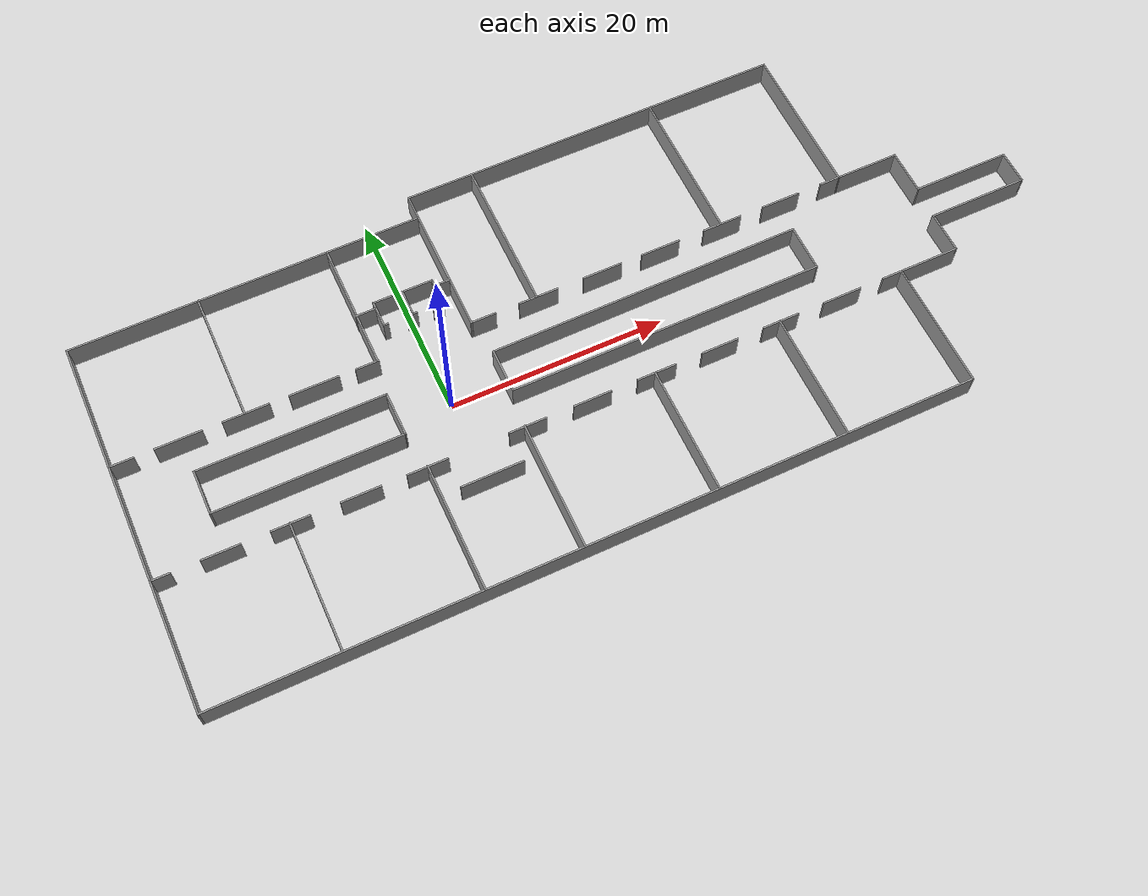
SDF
<?xml version='1.0'?>
<sdf version='1.7'>
  <model name='302_3f_room_and_hallway_c'>
    <pose>13.7802 1.31646 0 0 -0 0</pose>
    <link name='Wall_0'>
      <collision name='Wall_0_Collision'>
        <geometry>
          <box>
            <size>2.18139 0.15 2.5</size>
          </box>
        </geometry>
        <pose>0 0 1.25 0 -0 0</pose>
      </collision>
      <visual name='Wall_0_Visual'>
        <pose>0 0 1.25 0 -0 0</pose>
        <geometry>
          <box>
            <size>2.18139 0.15 2.5</size>
          </box>
        </geometry>
        <material>
          <script>
            <uri>file://media/materials/scripts/gazebo.material</uri>
            <name>Gazebo/Grey</name>
          </script>
          <ambient>1 1 1 1</ambient>
        </material>
        <meta>
          <layer>0</layer>
        </meta>
      </visual>
      <pose>-19.1407 4.17518 0 0 -0 3.14159</pose>
    </link>
    <link name='Wall_10'>
      <collision name='Wall_10_Collision'>
        <geometry>
          <box>
            <size>24 0.15 2.5</size>
          </box>
        </geometry>
        <pose>0 0 1.25 0 -0 0</pose>
      </collision>
      <visual name='Wall_10_Visual'>
        <pose>0 0 1.25 0 -0 0</pose>
        <geometry>
          <box>
            <size>24 0.15 2.5</size>
          </box>
        </geometry>
        <material>
          <script>
            <uri>file://media/materials/scripts/gazebo.material</uri>
            <name>Gazebo/Grey</name>
          </script>
          <ambient>1 1 1 1</ambient>
        </material>
        <meta>
          <layer>0</layer>
        </meta>
      </visual>
      <pose>-30.1 16.2752 0 0 -0 0</pose>
    </link>
    <link name='Wall_100'>
      <collision name='Wall_100_Collision'>
        <geometry>
          <box>
            <size>2 0.15 2.5</size>
          </box>
        </geometry>
        <pose>0 0 1.25 0 -0 0</pose>
      </collision>
      <visual name='Wall_100_Visual'>
        <pose>0 0 1.25 0 -0 0</pose>
        <geometry>
          <box>
            <size>2 0.15 2.5</size>
          </box>
        </geometry>
        <material>
          <script>
            <uri>file://media/materials/scripts/gazebo.material</uri>
            <name>Gazebo/Grey</name>
          </script>
          <ambient>1 1 1 1</ambient>
        </material>
        <meta>
          <layer>0</layer>
        </meta>
      </visual>
      <pose>-10.8738 8.1512 0 0 -0 1.5708</pose>
    </link>
    <link name='Wall_101'>
      <collision name='Wall_101_Collision'>
        <geometry>
          <box>
            <size>1.5 0.15 2.5</size>
          </box>
        </geometry>
        <pose>0 0 1.25 0 -0 0</pose>
      </collision>
      <visual name='Wall_101_Visual'>
        <pose>0 0 1.25 0 -0 0</pose>
        <geometry>
          <box>
            <size>1.5 0.15 2.5</size>
          </box>
        </geometry>
        <material>
          <script>
            <uri>file://media/materials/scripts/gazebo.material</uri>
            <name>Gazebo/Grey</name>
          </script>
          <ambient>1 1 1 1</ambient>
        </material>
        <meta>
          <layer>0</layer>
        </meta>
      </visual>
      <pose>-10.1988 9.0762 0 0 -0 0</pose>
    </link>
    <link name='Wall_105'>
      <collision name='Wall_105_Collision'>
        <geometry>
          <box>
            <size>4.26858 0.15 2.5</size>
          </box>
        </geometry>
        <pose>0 0 1.25 0 -0 0</pose>
      </collision>
      <visual name='Wall_105_Visual'>
        <pose>0 0 1.25 0 -0 0</pose>
        <geometry>
          <box>
            <size>4.26858 0.15 2.5</size>
          </box>
        </geometry>
        <material>
          <script>
            <uri>file://media/materials/scripts/gazebo.material</uri>
            <name>Gazebo/Grey</name>
          </script>
          <ambient>1 1 1 1</ambient>
        </material>
        <meta>
          <layer>0</layer>
        </meta>
      </visual>
      <pose>-35.784 -1.20336 0 0 -0 -1.5708</pose>
    </link>
    <link name='Wall_106'>
      <collision name='Wall_106_Collision'>
        <geometry>
          <box>
            <size>17.25 0.15 2.5</size>
          </box>
        </geometry>
        <pose>0 0 1.25 0 -0 0</pose>
      </collision>
      <visual name='Wall_106_Visual'>
        <pose>0 0 1.25 0 -0 0</pose>
        <geometry>
          <box>
            <size>17.25 0.15 2.5</size>
          </box>
        </geometry>
        <material>
          <script>
            <uri>file://media/materials/scripts/gazebo.material</uri>
            <name>Gazebo/Grey</name>
          </script>
          <ambient>1 1 1 1</ambient>
        </material>
        <meta>
          <layer>0</layer>
        </meta>
      </visual>
      <pose>-27.2042 -3.2626 0 0 -0 0</pose>
    </link>
    <link name='Wall_109'>
      <collision name='Wall_109_Collision'>
        <geometry>
          <box>
            <size>17.25 0.15 2.5</size>
          </box>
        </geometry>
        <pose>0 0 1.25 0 -0 0</pose>
      </collision>
      <visual name='Wall_109_Visual'>
        <pose>0 0 1.25 0 -0 0</pose>
        <geometry>
          <box>
            <size>17.25 0.15 2.5</size>
          </box>
        </geometry>
        <material>
          <script>
            <uri>file://media/materials/scripts/gazebo.material</uri>
            <name>Gazebo/Grey</name>
          </script>
          <ambient>1 1 1 1</ambient>
        </material>
        <meta>
          <layer>0</layer>
        </meta>
      </visual>
      <pose>-27.234 0.855878 0 0 -0 0</pose>
    </link>
    <link name='Wall_11'>
      <collision name='Wall_11_Collision'>
        <geometry>
          <box>
            <size>12.25 0.15 2.5</size>
          </box>
        </geometry>
        <pose>0 0 1.25 0 -0 0</pose>
      </collision>
      <visual name='Wall_11_Visual'>
        <pose>0 0 1.25 0 -0 0</pose>
        <geometry>
          <box>
            <size>12.25 0.15 2.5</size>
          </box>
        </geometry>
        <material>
          <script>
            <uri>file://media/materials/scripts/gazebo.material</uri>
            <name>Gazebo/Grey</name>
          </script>
          <ambient>1 1 1 1</ambient>
        </material>
        <meta>
          <layer>0</layer>
        </meta>
      </visual>
      <pose>-18.175 10.2252 0 0 -0 -1.5708</pose>
    </link>
    <link name='Wall_110'>
      <collision name='Wall_110_Collision'>
        <geometry>
          <box>
            <size>4.26858 0.15 2.5</size>
          </box>
        </geometry>
        <pose>0 0 1.25 0 -0 0</pose>
      </collision>
      <visual name='Wall_110_Visual'>
        <pose>0 0 1.25 0 -0 0</pose>
        <geometry>
          <box>
            <size>4.26858 0.15 2.5</size>
          </box>
        </geometry>
        <material>
          <script>
            <uri>file://media/materials/scripts/gazebo.material</uri>
            <name>Gazebo/Grey</name>
          </script>
          <ambient>1 1 1 1</ambient>
        </material>
        <meta>
          <layer>0</layer>
        </meta>
      </visual>
      <pose>-18.6691 -1.20336 0 0 -0 -1.56355</pose>
    </link>
    <link name='Wall_113'>
      <collision name='Wall_113_Collision'>
        <geometry>
          <box>
            <size>29.5 0.15 2.5</size>
          </box>
        </geometry>
        <pose>0 0 1.25 0 -0 0</pose>
      </collision>
      <visual name='Wall_113_Visual'>
        <pose>0 0 1.25 0 -0 0</pose>
        <geometry>
          <box>
            <size>29.5 0.15 2.5</size>
          </box>
        </geometry>
        <material>
          <script>
            <uri>file://media/materials/scripts/gazebo.material</uri>
            <name>Gazebo/Grey</name>
          </script>
          <ambient>1 1 1 1</ambient>
        </material>
        <meta>
          <layer>0</layer>
        </meta>
      </visual>
      <pose>5.84097 0.961874 0 0 -0 0.007223</pose>
    </link>
    <link name='Wall_114'>
      <collision name='Wall_114_Collision'>
        <geometry>
          <box>
            <size>4.5 0.15 2.5</size>
          </box>
        </geometry>
        <pose>0 0 1.25 0 -0 0</pose>
      </collision>
      <visual name='Wall_114_Visual'>
        <pose>0 0 1.25 0 -0 0</pose>
        <geometry>
          <box>
            <size>4.5 0.15 2.5</size>
          </box>
        </geometry>
        <material>
          <script>
            <uri>file://media/materials/scripts/gazebo.material</uri>
            <name>Gazebo/Grey</name>
          </script>
          <ambient>1 1 1 1</ambient>
        </material>
        <meta>
          <layer>0</layer>
        </meta>
      </visual>
      <pose>20.516 -1.11561 0 0 -0 -1.5708</pose>
    </link>
    <link name='Wall_118'>
      <collision name='Wall_118_Collision'>
        <geometry>
          <box>
            <size>29.5 0.15 2.5</size>
          </box>
        </geometry>
        <pose>0 0 1.25 0 -0 0</pose>
      </collision>
      <visual name='Wall_118_Visual'>
        <pose>0 0 1.25 0 -0 0</pose>
        <geometry>
          <box>
            <size>29.5 0.15 2.5</size>
          </box>
        </geometry>
        <material>
          <script>
            <uri>file://media/materials/scripts/gazebo.material</uri>
            <name>Gazebo/Grey</name>
          </script>
          <ambient>1 1 1 1</ambient>
        </material>
        <meta>
          <layer>0</layer>
        </meta>
      </visual>
      <pose>5.84097 -3.2626 0 0 -0 0</pose>
    </link>
    <link name='Wall_120'>
      <collision name='Wall_120_Collision'>
        <geometry>
          <box>
            <size>4.26847 0.15 2.5</size>
          </box>
        </geometry>
        <pose>0 0 1.25 0 -0 0</pose>
      </collision>
      <visual name='Wall_120_Visual'>
        <pose>0 0 1.25 0 -0 0</pose>
        <geometry>
          <box>
            <size>4.26847 0.15 2.5</size>
          </box>
        </geometry>
        <material>
          <script>
            <uri>file://media/materials/scripts/gazebo.material</uri>
            <name>Gazebo/Grey</name>
          </script>
          <ambient>1 1 1 1</ambient>
        </material>
        <meta>
          <layer>0</layer>
        </meta>
      </visual>
      <pose>-8.83403 -1.20336 0 0 -0 -1.5708</pose>
    </link>
    <link name='Wall_122'>
      <collision name='Wall_122_Collision'>
        <geometry>
          <box>
            <size>0.75 0.15 2.5</size>
          </box>
        </geometry>
        <pose>0 0 1.25 0 -0 0</pose>
      </collision>
      <visual name='Wall_122_Visual'>
        <pose>0 0 1.25 0 -0 0</pose>
        <geometry>
          <box>
            <size>0.75 0.15 2.5</size>
          </box>
        </geometry>
        <material>
          <script>
            <uri>file://media/materials/scripts/gazebo.material</uri>
            <name>Gazebo/Grey</name>
          </script>
          <ambient>1 1 1 1</ambient>
        </material>
        <meta>
          <layer>0</layer>
        </meta>
      </visual>
      <pose>-16.3738 9.3762 0 0 -0 1.5708</pose>
    </link>
    <link name='Wall_123'>
      <collision name='Wall_123_Collision'>
        <geometry>
          <box>
            <size>5.66483 0.15 2.5</size>
          </box>
        </geometry>
        <pose>0 0 1.25 0 -0 0</pose>
      </collision>
      <visual name='Wall_123_Visual'>
        <pose>0 0 1.25 0 -0 0</pose>
        <geometry>
          <box>
            <size>5.66483 0.15 2.5</size>
          </box>
        </geometry>
        <material>
          <script>
            <uri>file://media/materials/scripts/gazebo.material</uri>
            <name>Gazebo/Grey</name>
          </script>
          <ambient>1 1 1 1</ambient>
        </material>
        <meta>
          <layer>0</layer>
        </meta>
      </visual>
      <pose>-13.6164 9.67619 0 0 -0 0</pose>
    </link>
    <link name='Wall_124'>
      <collision name='Wall_124_Collision'>
        <geometry>
          <box>
            <size>0.75 0.15 2.5</size>
          </box>
        </geometry>
        <pose>0 0 1.25 0 -0 0</pose>
      </collision>
      <visual name='Wall_124_Visual'>
        <pose>0 0 1.25 0 -0 0</pose>
        <geometry>
          <box>
            <size>0.75 0.15 2.5</size>
          </box>
        </geometry>
        <material>
          <script>
            <uri>file://media/materials/scripts/gazebo.material</uri>
            <name>Gazebo/Grey</name>
          </script>
          <ambient>1 1 1 1</ambient>
        </material>
        <meta>
          <layer>0</layer>
        </meta>
      </visual>
      <pose>-10.859 9.3762 0 0 -0 -1.5708</pose>
    </link>
    <link name='Wall_126'>
      <collision name='Wall_126_Collision'>
        <geometry>
          <box>
            <size>2.5 0.15 2.5</size>
          </box>
        </geometry>
        <pose>0 0 1.25 0 -0 0</pose>
      </collision>
      <visual name='Wall_126_Visual'>
        <pose>0 0 1.25 0 -0 0</pose>
        <geometry>
          <box>
            <size>2.5 0.15 2.5</size>
          </box>
        </geometry>
        <material>
          <script>
            <uri>file://media/materials/scripts/gazebo.material</uri>
            <name>Gazebo/Grey</name>
          </script>
          <ambient>1 1 1 1</ambient>
        </material>
        <meta>
          <layer>0</layer>
        </meta>
      </visual>
      <pose>-13.6575 8.42871 0 0 -0 1.5708</pose>
    </link>
    <link name='Wall_13'>
      <collision name='Wall_13_Collision'>
        <geometry>
          <box>
            <size>8.91051 0.15 2.5</size>
          </box>
        </geometry>
        <pose>0 0 1.25 0 -0 0</pose>
      </collision>
      <visual name='Wall_13_Visual'>
        <pose>0 0 1.25 0 -0 0</pose>
        <geometry>
          <box>
            <size>8.91051 0.15 2.5</size>
          </box>
        </geometry>
        <material>
          <script>
            <uri>file://media/materials/scripts/gazebo.material</uri>
            <name>Gazebo/Grey</name>
          </script>
          <ambient>1 1 1 1</ambient>
        </material>
        <meta>
          <layer>0</layer>
        </meta>
      </visual>
      <pose>-13.7946 16.2804 0 0 -0 0.001183</pose>
    </link>
    <link name='Wall_14'>
      <collision name='Wall_14_Collision'>
        <geometry>
          <box>
            <size>2.49 0.15 2.5</size>
          </box>
        </geometry>
        <pose>0 0 1.25 0 -0 0</pose>
      </collision>
      <visual name='Wall_14_Visual'>
        <pose>0 0 1.25 0 -0 0</pose>
        <geometry>
          <box>
            <size>2.49 0.15 2.5</size>
          </box>
        </geometry>
        <material>
          <script>
            <uri>file://media/materials/scripts/gazebo.material</uri>
            <name>Gazebo/Grey</name>
          </script>
          <ambient>1 1 1 1</ambient>
        </material>
        <meta>
          <layer>0</layer>
        </meta>
      </visual>
      <pose>-9.41421 17.4555 0 0 -0 1.5708</pose>
    </link>
    <link name='Wall_15'>
      <collision name='Wall_15_Collision'>
        <geometry>
          <box>
            <size>36.5892 0.15 2.5</size>
          </box>
        </geometry>
        <pose>0 0 1.25 0 -0 0</pose>
      </collision>
      <visual name='Wall_15_Visual'>
        <pose>0 0 1.25 0 -0 0</pose>
        <geometry>
          <box>
            <size>36.5892 0.15 2.5</size>
          </box>
        </geometry>
        <material>
          <script>
            <uri>file://media/materials/scripts/gazebo.material</uri>
            <name>Gazebo/Grey</name>
          </script>
          <ambient>1 1 1 1</ambient>
        </material>
        <meta>
          <layer>0</layer>
        </meta>
      </visual>
      <pose>8.80539 18.6254 0 0 -0 -1e-05</pose>
    </link>
    <link name='Wall_16'>
      <collision name='Wall_16_Collision'>
        <geometry>
          <box>
            <size>14.5 0.15 2.5</size>
          </box>
        </geometry>
        <pose>0 0 1.25 0 -0 0</pose>
      </collision>
      <visual name='Wall_16_Visual'>
        <pose>0 0 1.25 0 -0 0</pose>
        <geometry>
          <box>
            <size>14.5 0.15 2.5</size>
          </box>
        </geometry>
        <material>
          <script>
            <uri>file://media/materials/scripts/gazebo.material</uri>
            <name>Gazebo/Grey</name>
          </script>
          <ambient>1 1 1 1</ambient>
        </material>
        <meta>
          <layer>0</layer>
        </meta>
      </visual>
      <pose>27.025 11.4502 0 0 -0 -1.5708</pose>
    </link>
    <link name='Wall_17'>
      <collision name='Wall_17_Collision'>
        <geometry>
          <box>
            <size>2 0.15 2.5</size>
          </box>
        </geometry>
        <pose>0 0 1.25 0 -0 0</pose>
      </collision>
      <visual name='Wall_17_Visual'>
        <pose>0 0 1.25 0 -0 0</pose>
        <geometry>
          <box>
            <size>2 0.15 2.5</size>
          </box>
        </geometry>
        <material>
          <script>
            <uri>file://media/materials/scripts/gazebo.material</uri>
            <name>Gazebo/Grey</name>
          </script>
          <ambient>1 1 1 1</ambient>
        </material>
        <meta>
          <layer>0</layer>
        </meta>
      </visual>
      <pose>26.1 4.27518 0 0 -0 3.14159</pose>
    </link>
    <link name='Wall_19'>
      <collision name='Wall_19_Collision'>
        <geometry>
          <box>
            <size>3.75 0.15 2.5</size>
          </box>
        </geometry>
        <pose>0 0 1.25 0 -0 0</pose>
      </collision>
      <visual name='Wall_19_Visual'>
        <pose>0 0 1.25 0 -0 0</pose>
        <geometry>
          <box>
            <size>3.75 0.15 2.5</size>
          </box>
        </geometry>
        <material>
          <script>
            <uri>file://media/materials/scripts/gazebo.material</uri>
            <name>Gazebo/Grey</name>
          </script>
          <ambient>1 1 1 1</ambient>
        </material>
        <meta>
          <layer>0</layer>
        </meta>
      </visual>
      <pose>21.025 4.27518 0 0 -0 3.14159</pose>
    </link>
    <link name='Wall_2'>
      <collision name='Wall_2_Collision'>
        <geometry>
          <box>
            <size>4.56861 0.15 2.5</size>
          </box>
        </geometry>
        <pose>0 0 1.25 0 -0 0</pose>
      </collision>
      <visual name='Wall_2_Visual'>
        <pose>0 0 1.25 0 -0 0</pose>
        <geometry>
          <box>
            <size>4.56861 0.15 2.5</size>
          </box>
        </geometry>
        <material>
          <script>
            <uri>file://media/materials/scripts/gazebo.material</uri>
            <name>Gazebo/Grey</name>
          </script>
          <ambient>1 1 1 1</ambient>
        </material>
        <meta>
          <layer>0</layer>
        </meta>
      </visual>
      <pose>-23.9657 4.17518 0 0 -0 3.14159</pose>
    </link>
    <link name='Wall_21'>
      <collision name='Wall_21_Collision'>
        <geometry>
          <box>
            <size>3.75 0.15 2.5</size>
          </box>
        </geometry>
        <pose>0 0 1.25 0 -0 0</pose>
      </collision>
      <visual name='Wall_21_Visual'>
        <pose>0 0 1.25 0 -0 0</pose>
        <geometry>
          <box>
            <size>3.75 0.15 2.5</size>
          </box>
        </geometry>
        <material>
          <script>
            <uri>file://media/materials/scripts/gazebo.material</uri>
            <name>Gazebo/Grey</name>
          </script>
          <ambient>1 1 1 1</ambient>
        </material>
        <meta>
          <layer>0</layer>
        </meta>
      </visual>
      <pose>15.075 4.27518 0 0 -0 3.14159</pose>
    </link>
    <link name='Wall_23'>
      <collision name='Wall_23_Collision'>
        <geometry>
          <box>
            <size>3.75 0.15 2.5</size>
          </box>
        </geometry>
        <pose>0 0 1.25 0 -0 0</pose>
      </collision>
      <visual name='Wall_23_Visual'>
        <pose>0 0 1.25 0 -0 0</pose>
        <geometry>
          <box>
            <size>3.75 0.15 2.5</size>
          </box>
        </geometry>
        <material>
          <script>
            <uri>file://media/materials/scripts/gazebo.material</uri>
            <name>Gazebo/Grey</name>
          </script>
          <ambient>1 1 1 1</ambient>
        </material>
        <meta>
          <layer>0</layer>
        </meta>
      </visual>
      <pose>8.875 4.27518 0 0 -0 3.14159</pose>
    </link>
    <link name='Wall_25'>
      <collision name='Wall_25_Collision'>
        <geometry>
          <box>
            <size>3.75 0.15 2.5</size>
          </box>
        </geometry>
        <pose>0 0 1.25 0 -0 0</pose>
      </collision>
      <visual name='Wall_25_Visual'>
        <pose>0 0 1.25 0 -0 0</pose>
        <geometry>
          <box>
            <size>3.75 0.15 2.5</size>
          </box>
        </geometry>
        <material>
          <script>
            <uri>file://media/materials/scripts/gazebo.material</uri>
            <name>Gazebo/Grey</name>
          </script>
          <ambient>1 1 1 1</ambient>
        </material>
        <meta>
          <layer>0</layer>
        </meta>
      </visual>
      <pose>3.175 4.27518 0 0 -0 3.14159</pose>
    </link>
    <link name='Wall_27'>
      <collision name='Wall_27_Collision'>
        <geometry>
          <box>
            <size>3.75 0.15 2.5</size>
          </box>
        </geometry>
        <pose>0 0 1.25 0 -0 0</pose>
      </collision>
      <visual name='Wall_27_Visual'>
        <pose>0 0 1.25 0 -0 0</pose>
        <geometry>
          <box>
            <size>3.75 0.15 2.5</size>
          </box>
        </geometry>
        <material>
          <script>
            <uri>file://media/materials/scripts/gazebo.material</uri>
            <name>Gazebo/Grey</name>
          </script>
          <ambient>1 1 1 1</ambient>
        </material>
        <meta>
          <layer>0</layer>
        </meta>
      </visual>
      <pose>-3.025 4.27518 0 0 -0 3.14159</pose>
    </link>
    <link name='Wall_32'>
      <collision name='Wall_32_Collision'>
        <geometry>
          <box>
            <size>2.38924 0.15 2.5</size>
          </box>
        </geometry>
        <pose>0 0 1.25 0 -0 0</pose>
      </collision>
      <visual name='Wall_32_Visual'>
        <pose>0 0 1.25 0 -0 0</pose>
        <geometry>
          <box>
            <size>2.38924 0.15 2.5</size>
          </box>
        </geometry>
        <material>
          <script>
            <uri>file://media/materials/scripts/gazebo.material</uri>
            <name>Gazebo/Grey</name>
          </script>
          <ambient>1 1 1 1</ambient>
        </material>
        <meta>
          <layer>0</layer>
        </meta>
      </visual>
      <pose>-8.29471 4.27554 0 0 -0 3.14159</pose>
    </link>
    <link name='Wall_33'>
      <collision name='Wall_33_Collision'>
        <geometry>
          <box>
            <size>12.16 0.15 2.5</size>
          </box>
        </geometry>
        <pose>0 0 1.25 0 -0 0</pose>
      </collision>
      <visual name='Wall_33_Visual'>
        <pose>0 0 1.25 0 -0 0</pose>
        <geometry>
          <box>
            <size>12.16 0.15 2.5</size>
          </box>
        </geometry>
        <material>
          <script>
            <uri>file://media/materials/scripts/gazebo.material</uri>
            <name>Gazebo/Grey</name>
          </script>
          <ambient>1 1 1 1</ambient>
        </material>
        <meta>
          <layer>0</layer>
        </meta>
      </visual>
      <pose>-9.41421 10.2805 0 0 -0 1.5708</pose>
    </link>
    <link name='Wall_36'>
      <collision name='Wall_36_Collision'>
        <geometry>
          <box>
            <size>14.5 0.15 2.5</size>
          </box>
        </geometry>
        <pose>0 0 1.25 0 -0 0</pose>
      </collision>
      <visual name='Wall_36_Visual'>
        <pose>0 0 1.25 0 -0 0</pose>
        <geometry>
          <box>
            <size>14.5 0.15 2.5</size>
          </box>
        </geometry>
        <material>
          <script>
            <uri>file://media/materials/scripts/gazebo.material</uri>
            <name>Gazebo/Grey</name>
          </script>
          <ambient>1 1 1 1</ambient>
        </material>
        <meta>
          <layer>0</layer>
        </meta>
      </visual>
      <pose>-3.20664 11.4573 0 0 -0 1.5708</pose>
    </link>
    <link name='Wall_38'>
      <collision name='Wall_38_Collision'>
        <geometry>
          <box>
            <size>23 0.15 2.5</size>
          </box>
        </geometry>
        <pose>0 0 1.25 0 -0 0</pose>
      </collision>
      <visual name='Wall_38_Visual'>
        <pose>0 0 1.25 0 -0 0</pose>
        <geometry>
          <box>
            <size>23 0.15 2.5</size>
          </box>
        </geometry>
        <material>
          <script>
            <uri>file://media/materials/scripts/gazebo.material</uri>
            <name>Gazebo/Grey</name>
          </script>
          <ambient>1 1 1 1</ambient>
        </material>
        <meta>
          <layer>0</layer>
        </meta>
      </visual>
      <pose>-42.025 -7.24982 0 0 -0 -1.5708</pose>
    </link>
    <link name='Wall_39'>
      <collision name='Wall_39_Collision'>
        <geometry>
          <box>
            <size>69.25 0.15 2.5</size>
          </box>
        </geometry>
        <pose>0 0 1.25 0 -0 0</pose>
      </collision>
      <visual name='Wall_39_Visual'>
        <pose>0 0 1.25 0 -0 0</pose>
        <geometry>
          <box>
            <size>69.25 0.15 2.5</size>
          </box>
        </geometry>
        <material>
          <script>
            <uri>file://media/materials/scripts/gazebo.material</uri>
            <name>Gazebo/Grey</name>
          </script>
          <ambient>1 1 1 1</ambient>
        </material>
        <meta>
          <layer>0</layer>
        </meta>
      </visual>
      <pose>-7.475 -18.6748 0 0 -0 0</pose>
    </link>
    <link name='Wall_4'>
      <collision name='Wall_4_Collision'>
        <geometry>
          <box>
            <size>4.25 0.15 2.5</size>
          </box>
        </geometry>
        <pose>0 0 1.25 0 -0 0</pose>
      </collision>
      <visual name='Wall_4_Visual'>
        <pose>0 0 1.25 0 -0 0</pose>
        <geometry>
          <box>
            <size>4.25 0.15 2.5</size>
          </box>
        </geometry>
        <material>
          <script>
            <uri>file://media/materials/scripts/gazebo.material</uri>
            <name>Gazebo/Grey</name>
          </script>
          <ambient>1 1 1 1</ambient>
        </material>
        <meta>
          <layer>0</layer>
        </meta>
      </visual>
      <pose>-30.075 4.17518 0 0 -0 3.14159</pose>
    </link>
    <link name='Wall_40'>
      <collision name='Wall_40_Collision'>
        <geometry>
          <box>
            <size>12 0.15 2.5</size>
          </box>
        </geometry>
        <pose>0 0 1.25 0 -0 0</pose>
      </collision>
      <visual name='Wall_40_Visual'>
        <pose>0 0 1.25 0 -0 0</pose>
        <geometry>
          <box>
            <size>12 0.15 2.5</size>
          </box>
        </geometry>
        <material>
          <script>
            <uri>file://media/materials/scripts/gazebo.material</uri>
            <name>Gazebo/Grey</name>
          </script>
          <ambient>1 1 1 1</ambient>
        </material>
        <meta>
          <layer>0</layer>
        </meta>
      </visual>
      <pose>27.075 -12.7498 0 0 -0 1.5708</pose>
    </link>
    <link name='Wall_41'>
      <collision name='Wall_41_Collision'>
        <geometry>
          <box>
            <size>5.75 0.15 2.5</size>
          </box>
        </geometry>
        <pose>0 0 1.25 0 -0 0</pose>
      </collision>
      <visual name='Wall_41_Visual'>
        <pose>0 0 1.25 0 -0 0</pose>
        <geometry>
          <box>
            <size>5.75 0.15 2.5</size>
          </box>
        </geometry>
        <material>
          <script>
            <uri>file://media/materials/scripts/gazebo.material</uri>
            <name>Gazebo/Grey</name>
          </script>
          <ambient>1 1 1 1</ambient>
        </material>
        <meta>
          <layer>0</layer>
        </meta>
      </visual>
      <pose>29.875 -6.82482 0 0 -0 0</pose>
    </link>
    <link name='Wall_42'>
      <collision name='Wall_42_Collision'>
        <geometry>
          <box>
            <size>4 0.15 2.5</size>
          </box>
        </geometry>
        <pose>0 0 1.25 0 -0 0</pose>
      </collision>
      <visual name='Wall_42_Visual'>
        <pose>0 0 1.25 0 -0 0</pose>
        <geometry>
          <box>
            <size>4 0.15 2.5</size>
          </box>
        </geometry>
        <material>
          <script>
            <uri>file://media/materials/scripts/gazebo.material</uri>
            <name>Gazebo/Grey</name>
          </script>
          <ambient>1 1 1 1</ambient>
        </material>
        <meta>
          <layer>0</layer>
        </meta>
      </visual>
      <pose>32.675 -4.89982 0 0 -0 1.5708</pose>
    </link>
    <link name='Wall_43'>
      <collision name='Wall_43_Collision'>
        <geometry>
          <box>
            <size>9.5 0.15 2.5</size>
          </box>
        </geometry>
        <pose>0 0 1.25 0 -0 0</pose>
      </collision>
      <visual name='Wall_43_Visual'>
        <pose>0 0 1.25 0 -0 0</pose>
        <geometry>
          <box>
            <size>9.5 0.15 2.5</size>
          </box>
        </geometry>
        <material>
          <script>
            <uri>file://media/materials/scripts/gazebo.material</uri>
            <name>Gazebo/Grey</name>
          </script>
          <ambient>1 1 1 1</ambient>
        </material>
        <meta>
          <layer>0</layer>
        </meta>
      </visual>
      <pose>37.35 -2.97482 0 0 -0 0</pose>
    </link>
    <link name='Wall_44'>
      <collision name='Wall_44_Collision'>
        <geometry>
          <box>
            <size>3.25 0.15 2.5</size>
          </box>
        </geometry>
        <pose>0 0 1.25 0 -0 0</pose>
      </collision>
      <visual name='Wall_44_Visual'>
        <pose>0 0 1.25 0 -0 0</pose>
        <geometry>
          <box>
            <size>3.25 0.15 2.5</size>
          </box>
        </geometry>
        <material>
          <script>
            <uri>file://media/materials/scripts/gazebo.material</uri>
            <name>Gazebo/Grey</name>
          </script>
          <ambient>1 1 1 1</ambient>
        </material>
        <meta>
          <layer>0</layer>
        </meta>
      </visual>
      <pose>42.025 -1.42482 0 0 -0 1.5708</pose>
    </link>
    <link name='Wall_45'>
      <collision name='Wall_45_Collision'>
        <geometry>
          <box>
            <size>9.25 0.15 2.5</size>
          </box>
        </geometry>
        <pose>0 0 1.25 0 -0 0</pose>
      </collision>
      <visual name='Wall_45_Visual'>
        <pose>0 0 1.25 0 -0 0</pose>
        <geometry>
          <box>
            <size>9.25 0.15 2.5</size>
          </box>
        </geometry>
        <material>
          <script>
            <uri>file://media/materials/scripts/gazebo.material</uri>
            <name>Gazebo/Grey</name>
          </script>
          <ambient>1 1 1 1</ambient>
        </material>
        <meta>
          <layer>0</layer>
        </meta>
      </visual>
      <pose>37.4749 0.12536 0 0 -0 3.14155</pose>
    </link>
    <link name='Wall_48'>
      <collision name='Wall_48_Collision'>
        <geometry>
          <box>
            <size>6.04979 0.15 2.5</size>
          </box>
        </geometry>
        <pose>0 0 1.25 0 -0 0</pose>
      </collision>
      <visual name='Wall_48_Visual'>
        <pose>0 0 1.25 0 -0 0</pose>
        <geometry>
          <box>
            <size>6.04979 0.15 2.5</size>
          </box>
        </geometry>
        <material>
          <script>
            <uri>file://media/materials/scripts/gazebo.material</uri>
            <name>Gazebo/Grey</name>
          </script>
          <ambient>1 1 1 1</ambient>
        </material>
        <meta>
          <layer>0</layer>
        </meta>
      </visual>
      <pose>29.9749 4.27536 0 0 -0 6.2e-05</pose>
    </link>
    <link name='Wall_49'>
      <collision name='Wall_49_Collision'>
        <geometry>
          <box>
            <size>4.30036 0.15 2.5</size>
          </box>
        </geometry>
        <pose>0 0 1.25 0 -0 0</pose>
      </collision>
      <visual name='Wall_49_Visual'>
        <pose>0 0 1.25 0 -0 0</pose>
        <geometry>
          <box>
            <size>4.30036 0.15 2.5</size>
          </box>
        </geometry>
        <material>
          <script>
            <uri>file://media/materials/scripts/gazebo.material</uri>
            <name>Gazebo/Grey</name>
          </script>
          <ambient>1 1 1 1</ambient>
        </material>
        <meta>
          <layer>0</layer>
        </meta>
      </visual>
      <pose>32.9248 2.20054 0 0 -0 -1.5708</pose>
    </link>
    <link name='Wall_51'>
      <collision name='Wall_51_Collision'>
        <geometry>
          <box>
            <size>2 0.15 2.5</size>
          </box>
        </geometry>
        <pose>0 0 1.25 0 -0 0</pose>
      </collision>
      <visual name='Wall_51_Visual'>
        <pose>0 0 1.25 0 -0 0</pose>
        <geometry>
          <box>
            <size>2 0.15 2.5</size>
          </box>
        </geometry>
        <material>
          <script>
            <uri>file://media/materials/scripts/gazebo.material</uri>
            <name>Gazebo/Grey</name>
          </script>
          <ambient>1 1 1 1</ambient>
        </material>
        <meta>
          <layer>0</layer>
        </meta>
      </visual>
      <pose>26.15 -6.82482 0 0 -0 3.14159</pose>
    </link>
    <link name='Wall_53'>
      <collision name='Wall_53_Collision'>
        <geometry>
          <box>
            <size>3.75 0.15 2.5</size>
          </box>
        </geometry>
        <pose>0 0 1.25 0 -0 0</pose>
      </collision>
      <visual name='Wall_53_Visual'>
        <pose>0 0 1.25 0 -0 0</pose>
        <geometry>
          <box>
            <size>3.75 0.15 2.5</size>
          </box>
        </geometry>
        <material>
          <script>
            <uri>file://media/materials/scripts/gazebo.material</uri>
            <name>Gazebo/Grey</name>
          </script>
          <ambient>1 1 1 1</ambient>
        </material>
        <meta>
          <layer>0</layer>
        </meta>
      </visual>
      <pose>21.075 -6.82482 0 0 -0 3.14159</pose>
    </link>
    <link name='Wall_55'>
      <collision name='Wall_55_Collision'>
        <geometry>
          <box>
            <size>3.5 0.15 2.5</size>
          </box>
        </geometry>
        <pose>0 0 1.25 0 -0 0</pose>
      </collision>
      <visual name='Wall_55_Visual'>
        <pose>0 0 1.25 0 -0 0</pose>
        <geometry>
          <box>
            <size>3.5 0.15 2.5</size>
          </box>
        </geometry>
        <material>
          <script>
            <uri>file://media/materials/scripts/gazebo.material</uri>
            <name>Gazebo/Grey</name>
          </script>
          <ambient>1 1 1 1</ambient>
        </material>
        <meta>
          <layer>0</layer>
        </meta>
      </visual>
      <pose>15 -6.82482 0 0 -0 3.14159</pose>
    </link>
    <link name='Wall_57'>
      <collision name='Wall_57_Collision'>
        <geometry>
          <box>
            <size>3.5 0.15 2.5</size>
          </box>
        </geometry>
        <pose>0 0 1.25 0 -0 0</pose>
      </collision>
      <visual name='Wall_57_Visual'>
        <pose>0 0 1.25 0 -0 0</pose>
        <geometry>
          <box>
            <size>3.5 0.15 2.5</size>
          </box>
        </geometry>
        <material>
          <script>
            <uri>file://media/materials/scripts/gazebo.material</uri>
            <name>Gazebo/Grey</name>
          </script>
          <ambient>1 1 1 1</ambient>
        </material>
        <meta>
          <layer>0</layer>
        </meta>
      </visual>
      <pose>9.05 -6.82482 0 0 -0 3.14159</pose>
    </link>
    <link name='Wall_59'>
      <collision name='Wall_59_Collision'>
        <geometry>
          <box>
            <size>3.69034 0.15 2.5</size>
          </box>
        </geometry>
        <pose>0 0 1.25 0 -0 0</pose>
      </collision>
      <visual name='Wall_59_Visual'>
        <pose>0 0 1.25 0 -0 0</pose>
        <geometry>
          <box>
            <size>3.69034 0.15 2.5</size>
          </box>
        </geometry>
        <material>
          <script>
            <uri>file://media/materials/scripts/gazebo.material</uri>
            <name>Gazebo/Grey</name>
          </script>
          <ambient>1 1 1 1</ambient>
        </material>
        <meta>
          <layer>0</layer>
        </meta>
      </visual>
      <pose>3.00483 -6.82482 0 0 -0 3.14159</pose>
    </link>
    <link name='Wall_6'>
      <collision name='Wall_6_Collision'>
        <geometry>
          <box>
            <size>4.25 0.15 2.5</size>
          </box>
        </geometry>
        <pose>0 0 1.25 0 -0 0</pose>
      </collision>
      <visual name='Wall_6_Visual'>
        <pose>0 0 1.25 0 -0 0</pose>
        <geometry>
          <box>
            <size>4.25 0.15 2.5</size>
          </box>
        </geometry>
        <material>
          <script>
            <uri>file://media/materials/scripts/gazebo.material</uri>
            <name>Gazebo/Grey</name>
          </script>
          <ambient>1 1 1 1</ambient>
        </material>
        <meta>
          <layer>0</layer>
        </meta>
      </visual>
      <pose>-36.025 4.17518 0 0 -0 3.14159</pose>
    </link>
    <link name='Wall_61'>
      <collision name='Wall_61_Collision'>
        <geometry>
          <box>
            <size>3.55966 0.15 2.5</size>
          </box>
        </geometry>
        <pose>0 0 1.25 0 -0 0</pose>
      </collision>
      <visual name='Wall_61_Visual'>
        <pose>0 0 1.25 0 -0 0</pose>
        <geometry>
          <box>
            <size>3.55966 0.15 2.5</size>
          </box>
        </geometry>
        <material>
          <script>
            <uri>file://media/materials/scripts/gazebo.material</uri>
            <name>Gazebo/Grey</name>
          </script>
          <ambient>1 1 1 1</ambient>
        </material>
        <meta>
          <layer>0</layer>
        </meta>
      </visual>
      <pose>-3.07017 -6.82482 0 0 -0 3.14159</pose>
    </link>
    <link name='Wall_63'>
      <collision name='Wall_63_Collision'>
        <geometry>
          <box>
            <size>3.5 0.15 2.5</size>
          </box>
        </geometry>
        <pose>0 0 1.25 0 -0 0</pose>
      </collision>
      <visual name='Wall_63_Visual'>
        <pose>0 0 1.25 0 -0 0</pose>
        <geometry>
          <box>
            <size>3.5 0.15 2.5</size>
          </box>
        </geometry>
        <material>
          <script>
            <uri>file://media/materials/scripts/gazebo.material</uri>
            <name>Gazebo/Grey</name>
          </script>
          <ambient>1 1 1 1</ambient>
        </material>
        <meta>
          <layer>0</layer>
        </meta>
      </visual>
      <pose>-9.05 -6.82482 0 0 -0 3.14159</pose>
    </link>
    <link name='Wall_65'>
      <collision name='Wall_65_Collision'>
        <geometry>
          <box>
            <size>5.75 0.15 2.5</size>
          </box>
        </geometry>
        <pose>0 0 1.25 0 -0 0</pose>
      </collision>
      <visual name='Wall_65_Visual'>
        <pose>0 0 1.25 0 -0 0</pose>
        <geometry>
          <box>
            <size>5.75 0.15 2.5</size>
          </box>
        </geometry>
        <material>
          <script>
            <uri>file://media/materials/scripts/gazebo.material</uri>
            <name>Gazebo/Grey</name>
          </script>
          <ambient>1 1 1 1</ambient>
        </material>
        <meta>
          <layer>0</layer>
        </meta>
      </visual>
      <pose>-13.525 -9.67482 0 0 -0 3.14159</pose>
    </link>
    <link name='Wall_67'>
      <collision name='Wall_67_Collision'>
        <geometry>
          <box>
            <size>3.75 0.15 2.5</size>
          </box>
        </geometry>
        <pose>0 0 1.25 0 -0 0</pose>
      </collision>
      <visual name='Wall_67_Visual'>
        <pose>0 0 1.25 0 -0 0</pose>
        <geometry>
          <box>
            <size>3.75 0.15 2.5</size>
          </box>
        </geometry>
        <material>
          <script>
            <uri>file://media/materials/scripts/gazebo.material</uri>
            <name>Gazebo/Grey</name>
          </script>
          <ambient>1 1 1 1</ambient>
        </material>
        <meta>
          <layer>0</layer>
        </meta>
      </visual>
      <pose>-18.125 -6.82482 0 0 -0 3.14159</pose>
    </link>
    <link name='Wall_69'>
      <collision name='Wall_69_Collision'>
        <geometry>
          <box>
            <size>3.64728 0.15 2.5</size>
          </box>
        </geometry>
        <pose>0 0 1.25 0 -0 0</pose>
      </collision>
      <visual name='Wall_69_Visual'>
        <pose>0 0 1.25 0 -0 0</pose>
        <geometry>
          <box>
            <size>3.64728 0.15 2.5</size>
          </box>
        </geometry>
        <material>
          <script>
            <uri>file://media/materials/scripts/gazebo.material</uri>
            <name>Gazebo/Grey</name>
          </script>
          <ambient>1 1 1 1</ambient>
        </material>
        <meta>
          <layer>0</layer>
        </meta>
      </visual>
      <pose>-24.0236 -6.82492 0 0 -0 -3.14154</pose>
    </link>
    <link name='Wall_71'>
      <collision name='Wall_71_Collision'>
        <geometry>
          <box>
            <size>3.5 0.15 2.5</size>
          </box>
        </geometry>
        <pose>0 0 1.25 0 -0 0</pose>
      </collision>
      <visual name='Wall_71_Visual'>
        <pose>0 0 1.25 0 -0 0</pose>
        <geometry>
          <box>
            <size>3.5 0.15 2.5</size>
          </box>
        </geometry>
        <material>
          <script>
            <uri>file://media/materials/scripts/gazebo.material</uri>
            <name>Gazebo/Grey</name>
          </script>
          <ambient>1 1 1 1</ambient>
        </material>
        <meta>
          <layer>0</layer>
        </meta>
      </visual>
      <pose>-30.15 -6.82482 0 0 -0 3.14159</pose>
    </link>
    <link name='Wall_73'>
      <collision name='Wall_73_Collision'>
        <geometry>
          <box>
            <size>3.5 0.15 2.5</size>
          </box>
        </geometry>
        <pose>0 0 1.25 0 -0 0</pose>
      </collision>
      <visual name='Wall_73_Visual'>
        <pose>0 0 1.25 0 -0 0</pose>
        <geometry>
          <box>
            <size>3.5 0.15 2.5</size>
          </box>
        </geometry>
        <material>
          <script>
            <uri>file://media/materials/scripts/gazebo.material</uri>
            <name>Gazebo/Grey</name>
          </script>
          <ambient>1 1 1 1</ambient>
        </material>
        <meta>
          <layer>0</layer>
        </meta>
      </visual>
      <pose>-36.1 -6.82482 0 0 -0 3.14159</pose>
    </link>
    <link name='Wall_75'>
      <collision name='Wall_75_Collision'>
        <geometry>
          <box>
            <size>1.75 0.15 2.5</size>
          </box>
        </geometry>
        <pose>0 0 1.25 0 -0 0</pose>
      </collision>
      <visual name='Wall_75_Visual'>
        <pose>0 0 1.25 0 -0 0</pose>
        <geometry>
          <box>
            <size>1.75 0.15 2.5</size>
          </box>
        </geometry>
        <material>
          <script>
            <uri>file://media/materials/scripts/gazebo.material</uri>
            <name>Gazebo/Grey</name>
          </script>
          <ambient>1 1 1 1</ambient>
        </material>
        <meta>
          <layer>0</layer>
        </meta>
      </visual>
      <pose>-41.175 -6.82482 0 0 -0 3.14159</pose>
    </link>
    <link name='Wall_77'>
      <collision name='Wall_77_Collision'>
        <geometry>
          <box>
            <size>12 0.15 2.5</size>
          </box>
        </geometry>
        <pose>0 0 1.25 0 -0 0</pose>
      </collision>
      <visual name='Wall_77_Visual'>
        <pose>0 0 1.25 0 -0 0</pose>
        <geometry>
          <box>
            <size>12 0.15 2.5</size>
          </box>
        </geometry>
        <material>
          <script>
            <uri>file://media/materials/scripts/gazebo.material</uri>
            <name>Gazebo/Grey</name>
          </script>
          <ambient>1 1 1 1</ambient>
        </material>
        <meta>
          <layer>0</layer>
        </meta>
      </visual>
      <pose>-30.2065 -12.6951 0 0 -0 -1.5708</pose>
    </link>
    <link name='Wall_79'>
      <collision name='Wall_79_Collision'>
        <geometry>
          <box>
            <size>12 0.15 2.5</size>
          </box>
        </geometry>
        <pose>0 0 1.25 0 -0 0</pose>
      </collision>
      <visual name='Wall_79_Visual'>
        <pose>0 0 1.25 0 -0 0</pose>
        <geometry>
          <box>
            <size>12 0.15 2.5</size>
          </box>
        </geometry>
        <material>
          <script>
            <uri>file://media/materials/scripts/gazebo.material</uri>
            <name>Gazebo/Grey</name>
          </script>
          <ambient>1 1 1 1</ambient>
        </material>
        <meta>
          <layer>0</layer>
        </meta>
      </visual>
      <pose>-18.0927 -12.6951 0 0 -0 -1.5708</pose>
    </link>
    <link name='Wall_8'>
      <collision name='Wall_8_Collision'>
        <geometry>
          <box>
            <size>2.25 0.15 2.5</size>
          </box>
        </geometry>
        <pose>0 0 1.25 0 -0 0</pose>
      </collision>
      <visual name='Wall_8_Visual'>
        <pose>0 0 1.25 0 -0 0</pose>
        <geometry>
          <box>
            <size>2.25 0.15 2.5</size>
          </box>
        </geometry>
        <material>
          <script>
            <uri>file://media/materials/scripts/gazebo.material</uri>
            <name>Gazebo/Grey</name>
          </script>
          <ambient>1 1 1 1</ambient>
        </material>
        <meta>
          <layer>0</layer>
        </meta>
      </visual>
      <pose>-40.975 4.17518 0 0 -0 3.14159</pose>
    </link>
    <link name='Wall_81'>
      <collision name='Wall_81_Collision'>
        <geometry>
          <box>
            <size>12 0.15 2.5</size>
          </box>
        </geometry>
        <pose>0 0 1.25 0 -0 0</pose>
      </collision>
      <visual name='Wall_81_Visual'>
        <pose>0 0 1.25 0 -0 0</pose>
        <geometry>
          <box>
            <size>12 0.15 2.5</size>
          </box>
        </geometry>
        <material>
          <script>
            <uri>file://media/materials/scripts/gazebo.material</uri>
            <name>Gazebo/Grey</name>
          </script>
          <ambient>1 1 1 1</ambient>
        </material>
        <meta>
          <layer>0</layer>
        </meta>
      </visual>
      <pose>-9.32862 -12.6951 0 0 -0 -1.5708</pose>
    </link>
    <link name='Wall_83'>
      <collision name='Wall_83_Collision'>
        <geometry>
          <box>
            <size>12 0.15 2.5</size>
          </box>
        </geometry>
        <pose>0 0 1.25 0 -0 0</pose>
      </collision>
      <visual name='Wall_83_Visual'>
        <pose>0 0 1.25 0 -0 0</pose>
        <geometry>
          <box>
            <size>12 0.15 2.5</size>
          </box>
        </geometry>
        <material>
          <script>
            <uri>file://media/materials/scripts/gazebo.material</uri>
            <name>Gazebo/Grey</name>
          </script>
          <ambient>1 1 1 1</ambient>
        </material>
        <meta>
          <layer>0</layer>
        </meta>
      </visual>
      <pose>2.831 -12.741 0 0 -0 -1.5708</pose>
    </link>
    <link name='Wall_85'>
      <collision name='Wall_85_Collision'>
        <geometry>
          <box>
            <size>12 0.15 2.5</size>
          </box>
        </geometry>
        <pose>0 0 1.25 0 -0 0</pose>
      </collision>
      <visual name='Wall_85_Visual'>
        <pose>0 0 1.25 0 -0 0</pose>
        <geometry>
          <box>
            <size>12 0.15 2.5</size>
          </box>
        </geometry>
        <material>
          <script>
            <uri>file://media/materials/scripts/gazebo.material</uri>
            <name>Gazebo/Grey</name>
          </script>
          <ambient>1 1 1 1</ambient>
        </material>
        <meta>
          <layer>0</layer>
        </meta>
      </visual>
      <pose>14.8988 -12.741 0 0 -0 -1.5708</pose>
    </link>
    <link name='Wall_87'>
      <collision name='Wall_87_Collision'>
        <geometry>
          <box>
            <size>14.5 0.15 2.5</size>
          </box>
        </geometry>
        <pose>0 0 1.25 0 -0 0</pose>
      </collision>
      <visual name='Wall_87_Visual'>
        <pose>0 0 1.25 0 -0 0</pose>
        <geometry>
          <box>
            <size>14.5 0.15 2.5</size>
          </box>
        </geometry>
        <material>
          <script>
            <uri>file://media/materials/scripts/gazebo.material</uri>
            <name>Gazebo/Grey</name>
          </script>
          <ambient>1 1 1 1</ambient>
        </material>
        <meta>
          <layer>0</layer>
        </meta>
      </visual>
      <pose>14.9332 11.4998 0 0 -0 1.5708</pose>
    </link>
    <link name='Wall_89'>
      <collision name='Wall_89_Collision'>
        <geometry>
          <box>
            <size>12.25 0.15 2.5</size>
          </box>
        </geometry>
        <pose>0 0 1.25 0 -0 0</pose>
      </collision>
      <visual name='Wall_89_Visual'>
        <pose>0 0 1.25 0 -0 0</pose>
        <geometry>
          <box>
            <size>12.25 0.15 2.5</size>
          </box>
        </geometry>
        <material>
          <script>
            <uri>file://media/materials/scripts/gazebo.material</uri>
            <name>Gazebo/Grey</name>
          </script>
          <ambient>1 1 1 1</ambient>
        </material>
        <meta>
          <layer>0</layer>
        </meta>
      </visual>
      <pose>-30.1835 10.2693 0 0 -0 1.5708</pose>
    </link>
    <link name='Wall_9'>
      <collision name='Wall_9_Collision'>
        <geometry>
          <box>
            <size>12.25 0.15 2.5</size>
          </box>
        </geometry>
        <pose>0 0 1.25 0 -0 0</pose>
      </collision>
      <visual name='Wall_9_Visual'>
        <pose>0 0 1.25 0 -0 0</pose>
        <geometry>
          <box>
            <size>12.25 0.15 2.5</size>
          </box>
        </geometry>
        <material>
          <script>
            <uri>file://media/materials/scripts/gazebo.material</uri>
            <name>Gazebo/Grey</name>
          </script>
          <ambient>1 1 1 1</ambient>
        </material>
        <meta>
          <layer>0</layer>
        </meta>
      </visual>
      <pose>-42.025 10.2252 0 0 -0 1.5708</pose>
    </link>
    <link name='Wall_93'>
      <collision name='Wall_93_Collision'>
        <geometry>
          <box>
            <size>2 0.15 2.5</size>
          </box>
        </geometry>
        <pose>0 0 1.25 0 -0 0</pose>
      </collision>
      <visual name='Wall_93_Visual'>
        <pose>0 0 1.25 0 -0 0</pose>
        <geometry>
          <box>
            <size>2 0.15 2.5</size>
          </box>
        </geometry>
        <material>
          <script>
            <uri>file://media/materials/scripts/gazebo.material</uri>
            <name>Gazebo/Grey</name>
          </script>
          <ambient>1 1 1 1</ambient>
        </material>
        <meta>
          <layer>0</layer>
        </meta>
      </visual>
      <pose>-17.2988 9.0762 0 0 -0 0</pose>
    </link>
    <link name='Wall_94'>
      <collision name='Wall_94_Collision'>
        <geometry>
          <box>
            <size>2 0.15 2.5</size>
          </box>
        </geometry>
        <pose>0 0 1.25 0 -0 0</pose>
      </collision>
      <visual name='Wall_94_Visual'>
        <pose>0 0 1.25 0 -0 0</pose>
        <geometry>
          <box>
            <size>2 0.15 2.5</size>
          </box>
        </geometry>
        <material>
          <script>
            <uri>file://media/materials/scripts/gazebo.material</uri>
            <name>Gazebo/Grey</name>
          </script>
          <ambient>1 1 1 1</ambient>
        </material>
        <meta>
          <layer>0</layer>
        </meta>
      </visual>
      <pose>-16.3738 8.1512 0 0 -0 -1.5708</pose>
    </link>
    <link name='Wall_95'>
      <collision name='Wall_95_Collision'>
        <geometry>
          <box>
            <size>0.5 0.15 2.5</size>
          </box>
        </geometry>
        <pose>0 0 1.25 0 -0 0</pose>
      </collision>
      <visual name='Wall_95_Visual'>
        <pose>0 0 1.25 0 -0 0</pose>
        <geometry>
          <box>
            <size>0.5 0.15 2.5</size>
          </box>
        </geometry>
        <material>
          <script>
            <uri>file://media/materials/scripts/gazebo.material</uri>
            <name>Gazebo/Grey</name>
          </script>
          <ambient>1 1 1 1</ambient>
        </material>
        <meta>
          <layer>0</layer>
        </meta>
      </visual>
      <pose>-16.1988 7.22619 0 0 -0 0</pose>
    </link>
    <link name='Wall_97'>
      <collision name='Wall_97_Collision'>
        <geometry>
          <box>
            <size>1 0.15 2.5</size>
          </box>
        </geometry>
        <pose>0 0 1.25 0 -0 0</pose>
      </collision>
      <visual name='Wall_97_Visual'>
        <pose>0 0 1.25 0 -0 0</pose>
        <geometry>
          <box>
            <size>1 0.15 2.5</size>
          </box>
        </geometry>
        <material>
          <script>
            <uri>file://media/materials/scripts/gazebo.material</uri>
            <name>Gazebo/Grey</name>
          </script>
          <ambient>1 1 1 1</ambient>
        </material>
        <meta>
          <layer>0</layer>
        </meta>
      </visual>
      <pose>-13.7488 7.22619 0 0 -0 0</pose>
    </link>
    <link name='Wall_99'>
      <collision name='Wall_99_Collision'>
        <geometry>
          <box>
            <size>1 0.15 2.5</size>
          </box>
        </geometry>
        <pose>0 0 1.25 0 -0 0</pose>
      </collision>
      <visual name='Wall_99_Visual'>
        <pose>0 0 1.25 0 -0 0</pose>
        <geometry>
          <box>
            <size>1 0.15 2.5</size>
          </box>
        </geometry>
        <material>
          <script>
            <uri>file://media/materials/scripts/gazebo.material</uri>
            <name>Gazebo/Grey</name>
          </script>
          <ambient>1 1 1 1</ambient>
        </material>
        <meta>
          <layer>0</layer>
        </meta>
      </visual>
      <pose>-11.2988 7.22619 0 0 -0 0</pose>
    </link>
    <static>1</static>
  </model>
</sdf>
